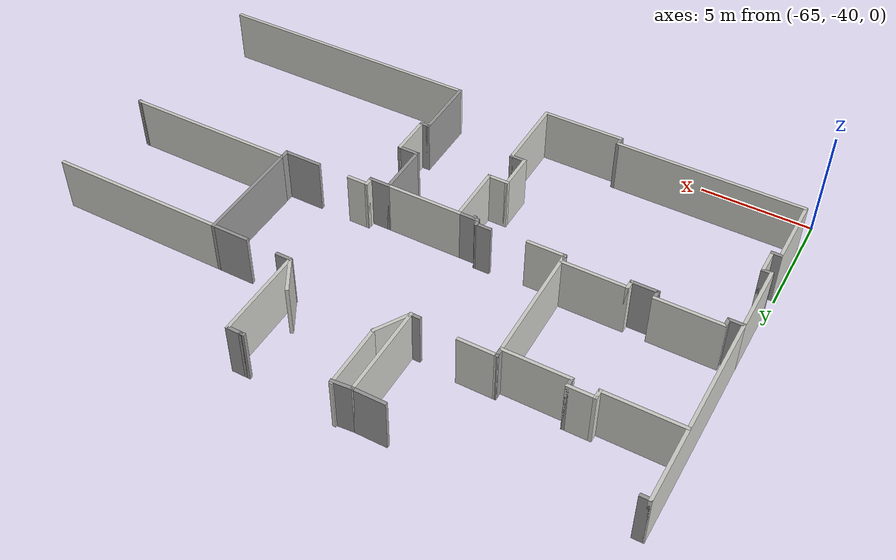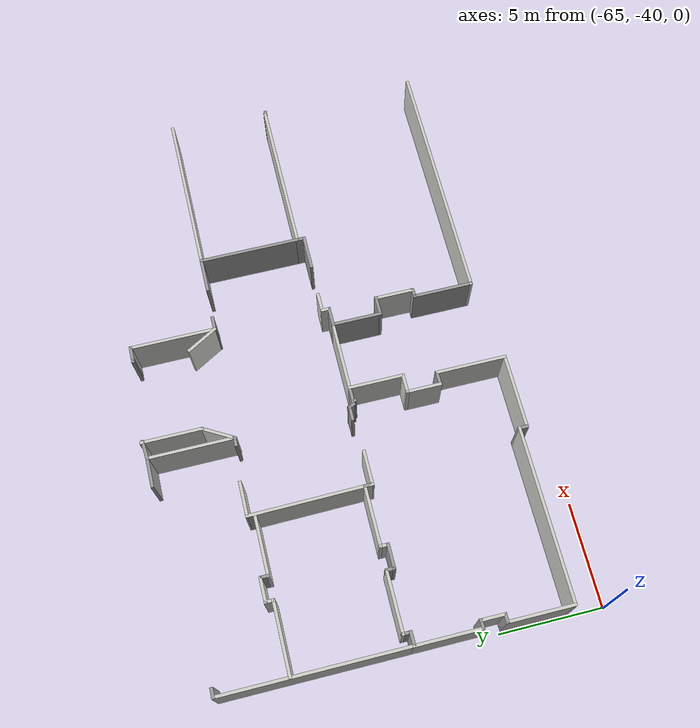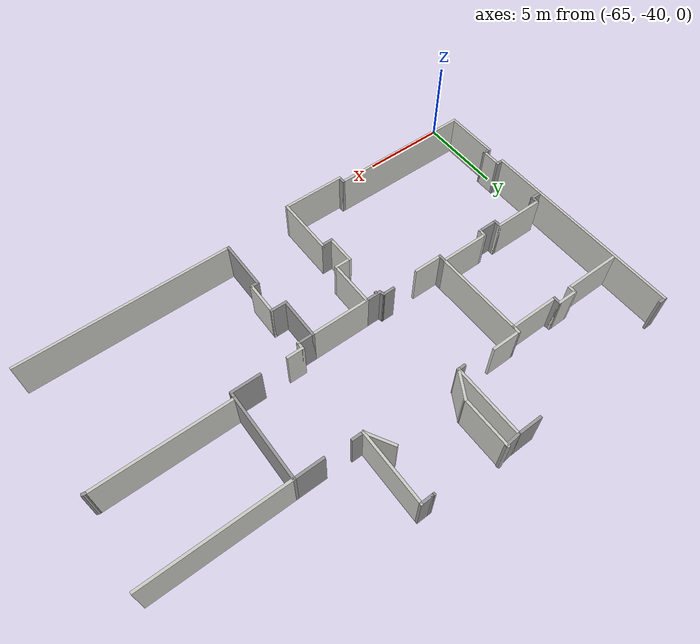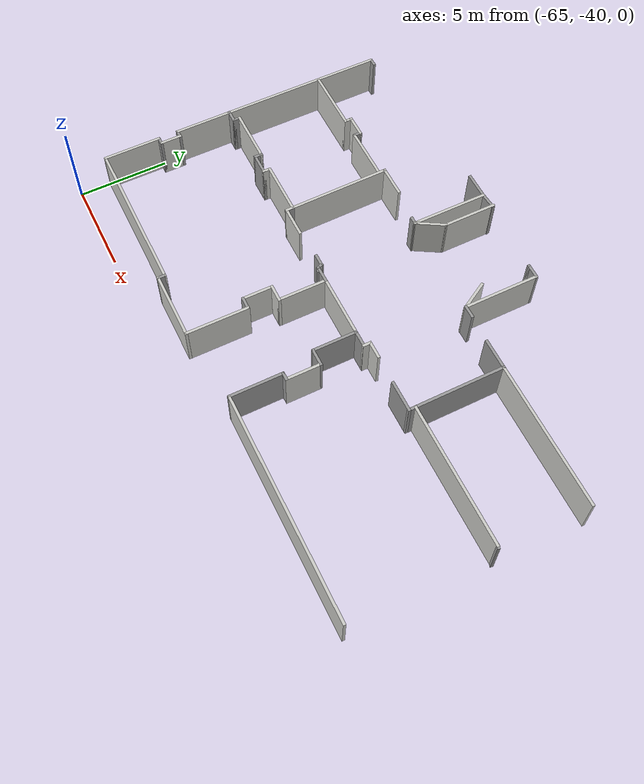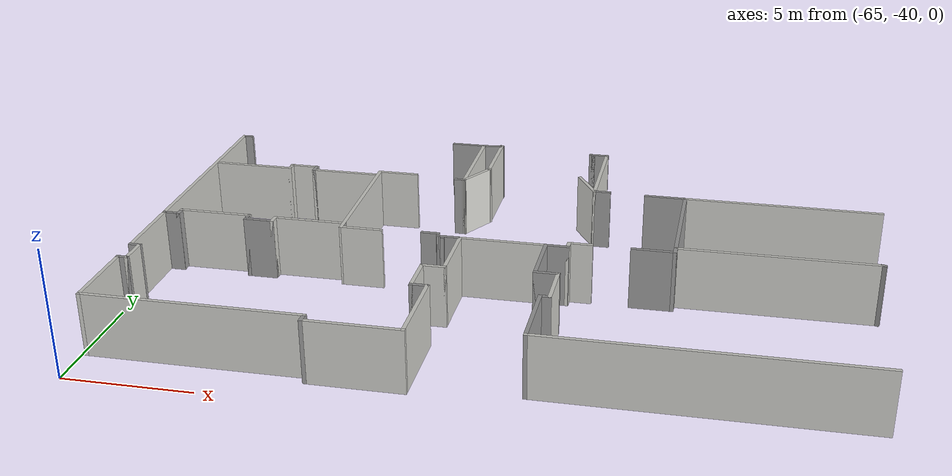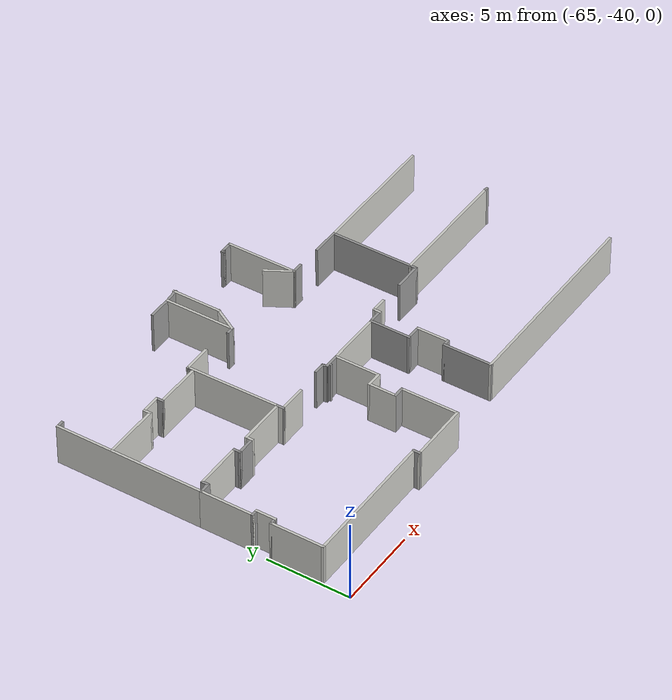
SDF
<sdf version="1.7">
 <model name="TD_n1">
  <pose>-37.6178 -12.8947 0 0 -0 0</pose>
  <link name="Wall_1">
   <collision name="Wall_1_Collision">
    <geometry><box><size>12.25 0.15 2.5</size></box></geometry>
    <pose>0 0 1.25 0 -0 0</pose>
   </collision>
   <visual name="Wall_1_Visual">
    <pose>0 0 1.25 0 -0 0</pose>
    <geometry><box><size>12.25 0.15 2.5</size></box></geometry>
    <material>
     <script><uri>file://media/materials/scripts/gazebo.material</uri><name>Gazebo/CeilingTiled</name></script>
     <ambient>1 1 1 1</ambient>
    </material>
    <meta><layer>0</layer></meta>
   </visual>
   <pose>-5.09282 -25.225 0 0 -0 3.14159</pose>
  </link>
  <link name="Wall_106">
   <collision name="Wall_106_Collision">
    <geometry><box><size>1.5 0.15 2.5</size></box></geometry>
    <pose>0 0 1.25 0 -0 0</pose>
   </collision>
   <visual name="Wall_106_Visual">
    <pose>0 0 1.25 0 -0 0</pose>
    <geometry><box><size>1.5 0.15 2.5</size></box></geometry>
    <material>
     <script><uri>file://media/materials/scripts/gazebo.material</uri><name>Gazebo/Grey</name></script>
     <ambient>1 1 1 1</ambient>
    </material>
    <meta><layer>0</layer></meta>
   </visual>
   <pose>-16.7826 -8.3195 0 0 -0 0</pose>
  </link>
  <link name="Wall_107">
   <collision name="Wall_107_Collision">
    <geometry><box><size>4.25 0.15 2.5</size></box></geometry>
    <pose>0 0 1.25 0 -0 0</pose>
   </collision>
   <visual name="Wall_107_Visual">
    <pose>0 0 1.25 0 -0 0</pose>
    <geometry><box><size>4.25 0.15 2.5</size></box></geometry>
    <material>
     <script><uri>file://media/materials/scripts/gazebo.material</uri><name>Gazebo/CeilingTiled</name></script>
     <ambient>1 1 1 1</ambient>
    </material>
    <meta><layer>0</layer></meta>
   </visual>
   <pose>-16.1076 -10.3695 0 0 -0 -1.5708</pose>
  </link>
  <link name="Wall_108">
   <collision name="Wall_108_Collision">
    <geometry><box><size>0.5 0.15 2.5</size></box></geometry>
    <pose>0 0 1.25 0 -0 0</pose>
   </collision>
   <visual name="Wall_108_Visual">
    <pose>0 0 1.25 0 -0 0</pose>
    <geometry><box><size>0.5 0.15 2.5</size></box></geometry>
    <material>
     <script><uri>file://media/materials/scripts/gazebo.material</uri><name>Gazebo/Grey</name></script>
     <ambient>1 1 1 1</ambient>
    </material>
    <meta><layer>0</layer></meta>
   </visual>
   <pose>-16.2826 -12.4195 0 0 -0 3.14159</pose>
  </link>
  <link name="Wall_110">
   <collision name="Wall_110_Collision">
    <geometry><box><size>3.5 0.15 2.5</size></box></geometry>
    <pose>0 0 1.25 0 -0 0</pose>
   </collision>
   <visual name="Wall_110_Visual">
    <pose>0 0 1.25 0 -0 0</pose>
    <geometry><box><size>3.5 0.15 2.5</size></box></geometry>
    <material>
     <script><uri>file://media/materials/scripts/gazebo.material</uri><name>Gazebo/CeilingTiled</name></script>
     <ambient>1 1 1 1</ambient>
    </material>
    <meta><layer>0</layer></meta>
   </visual>
   <pose>-25.4898 -12.578 0 0 -0 0</pose>
  </link>
  <link name="Wall_111">
   <collision name="Wall_111_Collision">
    <geometry><box><size>0.5 0.15 2.5</size></box></geometry>
    <pose>0 0 1.25 0 -0 0</pose>
   </collision>
   <visual name="Wall_111_Visual">
    <pose>0 0 1.25 0 -0 0</pose>
    <geometry><box><size>0.5 0.15 2.5</size></box></geometry>
    <material>
     <script><uri>file://media/materials/scripts/gazebo.material</uri><name>Gazebo/CeilingTiled</name></script>
     <ambient>1 1 1 1</ambient>
    </material>
    <meta><layer>0</layer></meta>
   </visual>
   <pose>-23.8148 -12.403 0 0 -0 1.5708</pose>
  </link>
  <link name="Wall_112">
   <collision name="Wall_112_Collision">
    <geometry><box><size>1.25 0.15 2.5</size></box></geometry>
    <pose>0 0 1.25 0 -0 0</pose>
   </collision>
   <visual name="Wall_112_Visual">
    <pose>0 0 1.25 0 -0 0</pose>
    <geometry><box><size>1.25 0.15 2.5</size></box></geometry>
    <material>
     <script><uri>file://media/materials/scripts/gazebo.material</uri><name>Gazebo/CeilingTiled</name></script>
     <ambient>1 1 1 1</ambient>
    </material>
    <meta><layer>0</layer></meta>
   </visual>
   <pose>-23.2648 -12.228 0 0 -0 0</pose>
  </link>
  <link name="Wall_113">
   <collision name="Wall_113_Collision">
    <geometry><box><size>0.5 0.15 2.5</size></box></geometry>
    <pose>0 0 1.25 0 -0 0</pose>
   </collision>
   <visual name="Wall_113_Visual">
    <pose>0 0 1.25 0 -0 0</pose>
    <geometry><box><size>0.5 0.15 2.5</size></box></geometry>
    <material>
     <script><uri>file://media/materials/scripts/gazebo.material</uri><name>Gazebo/Grey</name></script>
     <ambient>1 1 1 1</ambient>
    </material>
    <meta><layer>0</layer></meta>
   </visual>
   <pose>-22.7148 -12.403 0 0 -0 -1.5708</pose>
  </link>
  <link name="Wall_114">
   <collision name="Wall_114_Collision">
    <geometry><box><size>3 0.15 2.5</size></box></geometry>
    <pose>0 0 1.25 0 -0 0</pose>
   </collision>
   <visual name="Wall_114_Visual">
    <pose>0 0 1.25 0 -0 0</pose>
    <geometry><box><size>3 0.15 2.5</size></box></geometry>
    <material>
     <script><uri>file://media/materials/scripts/gazebo.material</uri><name>Gazebo/CeilingTiled</name></script>
     <ambient>1 1 1 1</ambient>
    </material>
    <meta><layer>0</layer></meta>
   </visual>
   <pose>-21.2898 -12.578 0 0 -0 0</pose>
  </link>
  <link name="Wall_115">
   <collision name="Wall_115_Collision">
    <geometry><box><size>0.5 0.15 2.5</size></box></geometry>
    <pose>0 0 1.25 0 -0 0</pose>
   </collision>
   <visual name="Wall_115_Visual">
    <pose>0 0 1.25 0 -0 0</pose>
    <geometry><box><size>0.5 0.15 2.5</size></box></geometry>
    <material>
     <script><uri>file://media/materials/scripts/gazebo.material</uri><name>Gazebo/Grey</name></script>
     <ambient>1 1 1 1</ambient>
    </material>
    <meta><layer>0</layer></meta>
   </visual>
   <pose>-19.8648 -12.403 0 0 -0 1.5708</pose>
  </link>
  <link name="Wall_116">
   <collision name="Wall_116_Collision">
    <geometry><box><size>1.75 0.15 2.5</size></box></geometry>
    <pose>0 0 1.25 0 -0 0</pose>
   </collision>
   <visual name="Wall_116_Visual">
    <pose>0 0 1.25 0 -0 0</pose>
    <geometry><box><size>1.75 0.15 2.5</size></box></geometry>
    <material>
     <script><uri>file://media/materials/scripts/gazebo.material</uri><name>Gazebo/CeilingTiled</name></script>
     <ambient>1 1 1 1</ambient>
    </material>
    <meta><layer>0</layer></meta>
   </visual>
   <pose>-19.0648 -12.228 0 0 -0 0</pose>
  </link>
  <link name="Wall_12">
   <collision name="Wall_12_Collision">
    <geometry><box><size>0.5 0.15 2.5</size></box></geometry>
    <pose>0 0 1.25 0 -0 0</pose>
   </collision>
   <visual name="Wall_12_Visual">
    <pose>0 0 1.25 0 -0 0</pose>
    <geometry><box><size>0.5 0.15 2.5</size></box></geometry>
    <material>
     <script><uri>file://media/materials/scripts/gazebo.material</uri><name>Gazebo/Grey</name></script>
     <ambient>1 1 1 1</ambient>
    </material>
    <meta><layer>0</layer></meta>
   </visual>
   <pose>-10.9678 -22.375 0 0 -0 0</pose>
  </link>
  <link name="Wall_13">
   <collision name="Wall_13_Collision">
    <geometry><box><size>2 0.15 2.5</size></box></geometry>
    <pose>0 0 1.25 0 -0 0</pose>
   </collision>
   <visual name="Wall_13_Visual">
    <pose>0 0 1.25 0 -0 0</pose>
    <geometry><box><size>2 0.15 2.5</size></box></geometry>
    <material>
     <script><uri>file://media/materials/scripts/gazebo.material</uri><name>Gazebo/CeilingTiled</name></script>
     <ambient>1 1 1 1</ambient>
    </material>
    <meta><layer>0</layer></meta>
   </visual>
   <pose>-10.7928 -21.45 0 0 -0 1.5708</pose>
  </link>
  <link name="Wall_14">
   <collision name="Wall_14_Collision">
    <geometry><box><size>1 0.15 2.5</size></box></geometry>
    <pose>0 0 1.25 0 -0 0</pose>
   </collision>
   <visual name="Wall_14_Visual">
    <pose>0 0 1.25 0 -0 0</pose>
    <geometry><box><size>1 0.15 2.5</size></box></geometry>
    <material>
     <script><uri>file://media/materials/scripts/gazebo.material</uri><name>Gazebo/Grey</name></script>
     <ambient>1 1 1 1</ambient>
    </material>
    <meta><layer>0</layer></meta>
   </visual>
   <pose>-11.2178 -20.525 0 0 -0 3.14159</pose>
  </link>
  <link name="Wall_147">
   <collision name="Wall_147_Collision">
    <geometry><box><size>0.987042 0.15 2.5</size></box></geometry>
    <pose>0 0 1.25 0 -0 0</pose>
   </collision>
   <visual name="Wall_147_Visual">
    <pose>0 0 1.25 0 -0 0</pose>
    <geometry><box><size>0.987042 0.15 2.5</size></box></geometry>
    <material>
     <script><uri>file://media/materials/scripts/gazebo.material</uri><name>Gazebo/Grey</name></script>
     <ambient>1 1 1 1</ambient>
    </material>
    <meta><layer>0</layer></meta>
   </visual>
   <pose>-15.6906 -8.28397 0 0 -0 -3.05658</pose>
  </link>
  <link name="Wall_15">
   <collision name="Wall_15_Collision">
    <geometry><box><size>2.5 0.15 2.5</size></box></geometry>
    <pose>0 0 1.25 0 -0 0</pose>
   </collision>
   <visual name="Wall_15_Visual">
    <pose>0 0 1.25 0 -0 0</pose>
    <geometry><box><size>2.5 0.15 2.5</size></box></geometry>
    <material>
     <script><uri>file://media/materials/scripts/gazebo.material</uri><name>Gazebo/Grey</name></script>
     <ambient>1 1 1 1</ambient>
    </material>
    <meta><layer>0</layer></meta>
   </visual>
   <pose>-11.6428 -19.35 0 0 -0 1.5708</pose>
  </link>
  <link name="Wall_152">
   <collision name="Wall_152_Collision">
    <geometry><box><size>1.75 0.15 2.5</size></box></geometry>
    <pose>0 0 1.25 0 -0 0</pose>
   </collision>
   <visual name="Wall_152_Visual">
    <pose>0 0 1.25 0 -0 0</pose>
    <geometry><box><size>1.75 0.15 2.5</size></box></geometry>
    <material>
     <script><uri>file://media/materials/scripts/gazebo.material</uri><name>Gazebo/CeilingTiled</name></script>
     <ambient>1 1 1 1</ambient>
    </material>
    <meta><layer>0</layer></meta>
   </visual>
   <pose>-15.7076 -11.7267 0 0 -0 1.0472</pose>
  </link>
  <link name="Wall_153">
   <collision name="Wall_153_Collision">
    <geometry><box><size>3 0.15 2.5</size></box></geometry>
    <pose>0 0 1.25 0 -0 0</pose>
   </collision>
   <visual name="Wall_153_Visual">
    <pose>0 0 1.25 0 -0 0</pose>
    <geometry><box><size>3 0.15 2.5</size></box></geometry>
    <material>
     <script><uri>file://media/materials/scripts/gazebo.material</uri><name>Gazebo/CeilingTiled</name></script>
     <ambient>1 1 1 1</ambient>
    </material>
    <meta><layer>0</layer></meta>
   </visual>
   <pose>-15.3076 -9.60886 0 0 -0 1.5708</pose>
  </link>
  <link name="Wall_155">
   <collision name="Wall_155_Collision">
    <geometry><box><size>0.25 0.15 2.5</size></box></geometry>
    <pose>0 0 1.25 0 -0 0</pose>
   </collision>
   <visual name="Wall_155_Visual">
    <pose>0 0 1.25 0 -0 0</pose>
    <geometry><box><size>0.25 0.15 2.5</size></box></geometry>
    <material>
     <script><uri>file://media/materials/scripts/gazebo.material</uri><name>Gazebo/Grey</name></script>
     <ambient>1 1 1 1</ambient>
    </material>
    <meta><layer>0</layer></meta>
   </visual>
   <pose>-11.1638 -8.48796 0 0 -0 3.14159</pose>
  </link>
  <link name="Wall_16">
   <collision name="Wall_16_Collision">
    <geometry><box><size>1 0.15 2.5</size></box></geometry>
    <pose>0 0 1.25 0 -0 0</pose>
   </collision>
   <visual name="Wall_16_Visual">
    <pose>0 0 1.25 0 -0 0</pose>
    <geometry><box><size>1 0.15 2.5</size></box></geometry>
    <material>
     <script><uri>file://media/materials/scripts/gazebo.material</uri><name>Gazebo/Grey</name></script>
     <ambient>1 1 1 1</ambient>
    </material>
    <meta><layer>0</layer></meta>
   </visual>
   <pose>-11.2178 -18.175 0 0 -0 0</pose>
  </link>
  <link name="Wall_163">
   <collision name="Wall_163_Collision">
    <geometry><box><size>5.99749 0.15 2.5</size></box></geometry>
    <pose>0 0 1.25 0 -0 0</pose>
   </collision>
   <visual name="Wall_163_Visual">
    <pose>0 0 1.25 0 -0 0</pose>
    <geometry><box><size>5.99749 0.15 2.5</size></box></geometry>
    <material>
     <script><uri>file://media/materials/scripts/gazebo.material</uri><name>Gazebo/CeilingTiled</name></script>
     <ambient>1 1 1 1</ambient>
    </material>
    <meta><layer>0</layer></meta>
   </visual>
   <pose>-19.8288 -15.1515 0 0 -0 1.5831</pose>
  </link>
  <link name="Wall_17">
   <collision name="Wall_17_Collision">
    <geometry><box><size>0.5 0.15 2.5</size></box></geometry>
    <pose>0 0 1.25 0 -0 0</pose>
   </collision>
   <visual name="Wall_17_Visual">
    <pose>0 0 1.25 0 -0 0</pose>
    <geometry><box><size>0.5 0.15 2.5</size></box></geometry>
    <material>
     <script><uri>file://media/materials/scripts/gazebo.material</uri><name>Gazebo/CeilingTiled</name></script>
     <ambient>1 1 1 1</ambient>
    </material>
    <meta><layer>0</layer></meta>
   </visual>
   <pose>-10.7928 -18 0 0 -0 1.5708</pose>
  </link>
  <link name="Wall_18">
   <collision name="Wall_18_Collision">
    <geometry><box><size>1 0.15 2.5</size></box></geometry>
    <pose>0 0 1.25 0 -0 0</pose>
   </collision>
   <visual name="Wall_18_Visual">
    <pose>0 0 1.25 0 -0 0</pose>
    <geometry><box><size>1 0.15 2.5</size></box></geometry>
    <material>
     <script><uri>file://media/materials/scripts/gazebo.material</uri><name>Gazebo/CeilingTiled</name></script>
     <ambient>1 1 1 1</ambient>
    </material>
    <meta><layer>0</layer></meta>
   </visual>
   <pose>-10.3678 -17.825 0 0 -0 0</pose>
  </link>
  <link name="Wall_20">
   <collision name="Wall_20_Collision">
    <geometry><box><size>1.75 0.15 2.5</size></box></geometry>
    <pose>0 0 1.25 0 -0 0</pose>
   </collision>
   <visual name="Wall_20_Visual">
    <pose>0 0 1.25 0 -0 0</pose>
    <geometry><box><size>1.75 0.15 2.5</size></box></geometry>
    <material>
     <script><uri>file://media/materials/scripts/gazebo.material</uri><name>Gazebo/Grey</name></script>
     <ambient>1 1 1 1</ambient>
    </material>
    <meta><layer>0</layer></meta>
   </visual>
   <pose>-7.55396 -17.8555 0 0 -0 0</pose>
  </link>
  <link name="Wall_21">
   <collision name="Wall_21_Collision">
    <geometry><box><size>0.5 0.15 2.5</size></box></geometry>
    <pose>0 0 1.25 0 -0 0</pose>
   </collision>
   <visual name="Wall_21_Visual">
    <pose>0 0 1.25 0 -0 0</pose>
    <geometry><box><size>0.5 0.15 2.5</size></box></geometry>
    <material>
     <script><uri>file://media/materials/scripts/gazebo.material</uri><name>Gazebo/Grey</name></script>
     <ambient>1 1 1 1</ambient>
    </material>
    <meta><layer>0</layer></meta>
   </visual>
   <pose>-6.75396 -17.6805 0 0 -0 1.5708</pose>
  </link>
  <link name="Wall_22">
   <collision name="Wall_22_Collision">
    <geometry><box><size>7.75 0.15 2.5</size></box></geometry>
    <pose>0 0 1.25 0 -0 0</pose>
   </collision>
   <visual name="Wall_22_Visual">
    <pose>0 0 1.25 0 -0 0</pose>
    <geometry><box><size>7.75 0.15 2.5</size></box></geometry>
    <material>
     <script><uri>file://media/materials/scripts/gazebo.material</uri><name>Gazebo/CeilingTiled</name></script>
     <ambient>1 1 1 1</ambient>
    </material>
    <meta><layer>0</layer></meta>
   </visual>
   <pose>-2.95396 -17.5055 0 0 -0 0</pose>
  </link>
  <link name="Wall_23">
   <collision name="Wall_23_Collision">
    <geometry><box><size>0.25 0.15 2.5</size></box></geometry>
    <pose>0 0 1.25 0 -0 0</pose>
   </collision>
   <visual name="Wall_23_Visual">
    <pose>0 0 1.25 0 -0 0</pose>
    <geometry><box><size>0.25 0.15 2.5</size></box></geometry>
    <material>
     <script><uri>file://media/materials/scripts/gazebo.material</uri><name>Gazebo/Grey</name></script>
     <ambient>1 1 1 1</ambient>
    </material>
    <meta><layer>0</layer></meta>
   </visual>
   <pose>0.894333 -17.5184 0 0 -0 -0.261799</pose>
  </link>
  <link name="Wall_25">
   <collision name="Wall_25_Collision">
    <geometry><box><size>5 0.15 2.5</size></box></geometry>
    <pose>0 0 1.25 0 -0 0</pose>
   </collision>
   <visual name="Wall_25_Visual">
    <pose>0 0 1.25 0 -0 0</pose>
    <geometry><box><size>5 0.15 2.5</size></box></geometry>
    <material>
     <script><uri>file://media/materials/scripts/gazebo.material</uri><name>Gazebo/Grey</name></script>
     <ambient>1 1 1 1</ambient>
    </material>
    <meta><layer>0</layer></meta>
   </visual>
   <pose>-6.75396 -15.0805 0 0 -0 1.5708</pose>
  </link>
  <link name="Wall_26">
   <collision name="Wall_26_Collision">
    <geometry><box><size>8 0.15 2.5</size></box></geometry>
    <pose>0 0 1.25 0 -0 0</pose>
   </collision>
   <visual name="Wall_26_Visual">
    <pose>0 0 1.25 0 -0 0</pose>
    <geometry><box><size>8 0.15 2.5</size></box></geometry>
    <material>
     <script><uri>file://media/materials/scripts/gazebo.material</uri><name>Gazebo/CeilingTiled</name></script>
     <ambient>1 1 1 1</ambient>
    </material>
    <meta><layer>0</layer></meta>
   </visual>
   <pose>-2.82896 -12.6555 0 0 -0 0</pose>
  </link>
  <link name="Wall_28">
   <collision name="Wall_28_Collision">
    <geometry><box><size>1.75 0.15 2.5</size></box></geometry>
    <pose>0 0 1.25 0 -0 0</pose>
   </collision>
   <visual name="Wall_28_Visual">
    <pose>0 0 1.25 0 -0 0</pose>
    <geometry><box><size>1.75 0.15 2.5</size></box></geometry>
    <material>
     <script><uri>file://media/materials/scripts/gazebo.material</uri><name>Gazebo/Grey</name></script>
     <ambient>1 1 1 1</ambient>
    </material>
    <meta><layer>0</layer></meta>
   </visual>
   <pose>-7.55396 -12.6555 0 0 -0 3.14159</pose>
  </link>
  <link name="Wall_35">
   <collision name="Wall_35_Collision">
    <geometry><box><size>0.75 0.15 2.5</size></box></geometry>
    <pose>0 0 1.25 0 -0 0</pose>
   </collision>
   <visual name="Wall_35_Visual">
    <pose>0 0 1.25 0 -0 0</pose>
    <geometry><box><size>0.75 0.15 2.5</size></box></geometry>
    <material>
     <script><uri>file://media/materials/scripts/gazebo.material</uri><name>Gazebo/Grey</name></script>
     <ambient>1 1 1 1</ambient>
    </material>
    <meta><layer>0</layer></meta>
   </visual>
   <pose>-10.2138 -12.588 0 0 -0 3.14159</pose>
  </link>
  <link name="Wall_36">
   <collision name="Wall_36_Collision">
    <geometry><box><size>1.75 0.15 2.5</size></box></geometry>
    <pose>0 0 1.25 0 -0 0</pose>
   </collision>
   <visual name="Wall_36_Visual">
    <pose>0 0 1.25 0 -0 0</pose>
    <geometry><box><size>1.75 0.15 2.5</size></box></geometry>
    <material>
     <script><uri>file://media/materials/scripts/gazebo.material</uri><name>Gazebo/CeilingTiled</name></script>
     <ambient>1 1 1 1</ambient>
    </material>
    <meta><layer>0</layer></meta>
   </visual>
   <pose>-10.9138 -11.8951 0 0 -0 2.0944</pose>
  </link>
  <link name="Wall_41">
   <collision name="Wall_41_Collision">
    <geometry><box><size>4.25 0.15 2.5</size></box></geometry>
    <pose>0 0 1.25 0 -0 0</pose>
   </collision>
   <visual name="Wall_41_Visual">
    <pose>0 0 1.25 0 -0 0</pose>
    <geometry><box><size>4.25 0.15 2.5</size></box></geometry>
    <material>
     <script><uri>file://media/materials/scripts/gazebo.material</uri><name>Gazebo/CeilingTiled</name></script>
     <ambient>1 1 1 1</ambient>
    </material>
    <meta><layer>0</layer></meta>
   </visual>
   <pose>-10.5138 -10.538 0 0 -0 1.5708</pose>
  </link>
  <link name="Wall_42">
   <collision name="Wall_42_Collision">
    <geometry><box><size>0.75 0.15 2.5</size></box></geometry>
    <pose>0 0 1.25 0 -0 0</pose>
   </collision>
   <visual name="Wall_42_Visual">
    <pose>0 0 1.25 0 -0 0</pose>
    <geometry><box><size>0.75 0.15 2.5</size></box></geometry>
    <material>
     <script><uri>file://media/materials/scripts/gazebo.material</uri><name>Gazebo/Grey</name></script>
     <ambient>1 1 1 1</ambient>
    </material>
    <meta><layer>0</layer></meta>
   </visual>
   <pose>-10.8138 -8.48796 0 0 -0 3.14159</pose>
  </link>
  <link name="Wall_44">
   <collision name="Wall_44_Collision">
    <geometry><box><size>0.15 0.15 2.5</size></box></geometry>
    <pose>0 0 1.25 0 -0 0</pose>
   </collision>
   <visual name="Wall_44_Visual">
    <pose>0 0 1.25 0 -0 0</pose>
    <geometry><box><size>0.15 0.15 2.5</size></box></geometry>
    <material>
     <script><uri>file://media/materials/scripts/gazebo.material</uri><name>Gazebo/Grey</name></script>
     <ambient>1 1 1 1</ambient>
    </material>
    <meta><layer>0</layer></meta>
   </visual>
   <pose>-11.1138 -8.48796 0 0 -0 0</pose>
  </link>
  <link name="Wall_54">
   <collision name="Wall_54_Collision">
    <geometry><box><size>3.5 0.15 2.5</size></box></geometry>
    <pose>0 0 1.25 0 -0 0</pose>
   </collision>
   <visual name="Wall_54_Visual">
    <pose>0 0 1.25 0 -0 0</pose>
    <geometry><box><size>3.5 0.15 2.5</size></box></geometry>
    <material>
     <script><uri>file://media/materials/scripts/gazebo.material</uri><name>Gazebo/CeilingTiled</name></script>
     <ambient>1 1 1 1</ambient>
    </material>
    <meta><layer>0</layer></meta>
   </visual>
   <pose>-13.3178 -18.175 0 0 -0 3.14159</pose>
  </link>
  <link name="Wall_55">
   <collision name="Wall_55_Collision">
    <geometry><box><size>2.75 0.15 2.5</size></box></geometry>
    <pose>0 0 1.25 0 -0 0</pose>
   </collision>
   <visual name="Wall_55_Visual">
    <pose>0 0 1.25 0 -0 0</pose>
    <geometry><box><size>2.75 0.15 2.5</size></box></geometry>
    <material>
     <script><uri>file://media/materials/scripts/gazebo.material</uri><name>Gazebo/CeilingTiled</name></script>
     <ambient>1 1 1 1</ambient>
    </material>
    <meta><layer>0</layer></meta>
   </visual>
   <pose>-14.9928 -19.475 0 0 -0 -1.5708</pose>
  </link>
  <link name="Wall_56">
   <collision name="Wall_56_Collision">
    <geometry><box><size>1 0.15 2.5</size></box></geometry>
    <pose>0 0 1.25 0 -0 0</pose>
   </collision>
   <visual name="Wall_56_Visual">
    <pose>0 0 1.25 0 -0 0</pose>
    <geometry><box><size>1 0.15 2.5</size></box></geometry>
    <material>
     <script><uri>file://media/materials/scripts/gazebo.material</uri><name>Gazebo/CeilingTiled</name></script>
     <ambient>1 1 1 1</ambient>
    </material>
    <meta><layer>0</layer></meta>
   </visual>
   <pose>-15.4178 -20.775 0 0 -0 3.14159</pose>
  </link>
  <link name="Wall_57">
   <collision name="Wall_57_Collision">
    <geometry><box><size>1.75 0.15 2.5</size></box></geometry>
    <pose>0 0 1.25 0 -0 0</pose>
   </collision>
   <visual name="Wall_57_Visual">
    <pose>0 0 1.25 0 -0 0</pose>
    <geometry><box><size>1.75 0.15 2.5</size></box></geometry>
    <material>
     <script><uri>file://media/materials/scripts/gazebo.material</uri><name>Gazebo/CeilingTiled</name></script>
     <ambient>1 1 1 1</ambient>
    </material>
    <meta><layer>0</layer></meta>
   </visual>
   <pose>-15.8428 -21.575 0 0 -0 -1.5708</pose>
  </link>
  <link name="Wall_58">
   <collision name="Wall_58_Collision">
    <geometry><box><size>0.75 0.15 2.5</size></box></geometry>
    <pose>0 0 1.25 0 -0 0</pose>
   </collision>
   <visual name="Wall_58_Visual">
    <pose>0 0 1.25 0 -0 0</pose>
    <geometry><box><size>0.75 0.15 2.5</size></box></geometry>
    <material>
     <script><uri>file://media/materials/scripts/gazebo.material</uri><name>Gazebo/Grey</name></script>
     <ambient>1 1 1 1</ambient>
    </material>
    <meta><layer>0</layer></meta>
   </visual>
   <pose>-15.5428 -22.375 0 0 -0 0</pose>
  </link>
  <link name="Wall_59">
   <collision name="Wall_59_Collision">
    <geometry><box><size>3.5 0.15 2.5</size></box></geometry>
    <pose>0 0 1.25 0 -0 0</pose>
   </collision>
   <visual name="Wall_59_Visual">
    <pose>0 0 1.25 0 -0 0</pose>
    <geometry><box><size>3.5 0.15 2.5</size></box></geometry>
    <material>
     <script><uri>file://media/materials/scripts/gazebo.material</uri><name>Gazebo/CeilingTiled</name></script>
     <ambient>1 1 1 1</ambient>
    </material>
    <meta><layer>0</layer></meta>
   </visual>
   <pose>-15.2428 -24.05 0 0 -0 -1.5708</pose>
  </link>
  <link name="Wall_60">
   <collision name="Wall_60_Collision">
    <geometry><box><size>3.75 0.15 2.5</size></box></geometry>
    <pose>0 0 1.25 0 -0 0</pose>
   </collision>
   <visual name="Wall_60_Visual">
    <pose>0 0 1.25 0 -0 0</pose>
    <geometry><box><size>3.75 0.15 2.5</size></box></geometry>
    <material>
     <script><uri>file://media/materials/scripts/gazebo.material</uri><name>Gazebo/CeilingTiled</name></script>
     <ambient>1 1 1 1</ambient>
    </material>
    <meta><layer>0</layer></meta>
   </visual>
   <pose>-17.0428 -25.725 0 0 -0 3.14159</pose>
  </link>
  <link name="Wall_61">
   <collision name="Wall_61_Collision">
    <geometry><box><size>0.5 0.15 2.5</size></box></geometry>
    <pose>0 0 1.25 0 -0 0</pose>
   </collision>
   <visual name="Wall_61_Visual">
    <pose>0 0 1.25 0 -0 0</pose>
    <geometry><box><size>0.5 0.15 2.5</size></box></geometry>
    <material>
     <script><uri>file://media/materials/scripts/gazebo.material</uri><name>Gazebo/Grey</name></script>
     <ambient>1 1 1 1</ambient>
    </material>
    <meta><layer>0</layer></meta>
   </visual>
   <pose>-18.8428 -25.55 0 0 -0 1.5708</pose>
  </link>
  <link name="Wall_62">
   <collision name="Wall_62_Collision">
    <geometry><box><size>8.5 0.15 2.5</size></box></geometry>
    <pose>0 0 1.25 0 -0 0</pose>
   </collision>
   <visual name="Wall_62_Visual">
    <pose>0 0 1.25 0 -0 0</pose>
    <geometry><box><size>8.5 0.15 2.5</size></box></geometry>
    <material>
     <script><uri>file://media/materials/scripts/gazebo.material</uri><name>Gazebo/CeilingTiled</name></script>
     <ambient>1 1 1 1</ambient>
    </material>
    <meta><layer>0</layer></meta>
   </visual>
   <pose>-23.0178 -25.375 0 0 -0 3.14159</pose>
  </link>
  <link name="Wall_63">
   <collision name="Wall_63_Collision">
    <geometry><box><size>3.25 0.15 2.5</size></box></geometry>
    <pose>0 0 1.25 0 -0 0</pose>
   </collision>
   <visual name="Wall_63_Visual">
    <pose>0 0 1.25 0 -0 0</pose>
    <geometry><box><size>3.25 0.15 2.5</size></box></geometry>
    <material>
     <script><uri>file://media/materials/scripts/gazebo.material</uri><name>Gazebo/CeilingTiled</name></script>
     <ambient>1 1 1 1</ambient>
    </material>
    <meta><layer>0</layer></meta>
   </visual>
   <pose>-27.1928 -23.825 0 0 -0 1.5708</pose>
  </link>
  <link name="Wall_65">
   <collision name="Wall_65_Collision">
    <geometry><box><size>0.5 0.15 2.5</size></box></geometry>
    <pose>0 0 1.25 0 -0 0</pose>
   </collision>
   <visual name="Wall_65_Visual">
    <pose>0 0 1.25 0 -0 0</pose>
    <geometry><box><size>0.5 0.15 2.5</size></box></geometry>
    <material>
     <script><uri>file://media/materials/scripts/gazebo.material</uri><name>Gazebo/Grey</name></script>
     <ambient>1 1 1 1</ambient>
    </material>
    <meta><layer>0</layer></meta>
   </visual>
   <pose>-27.0178 -22.275 0 0 -0 0</pose>
  </link>
  <link name="Wall_66">
   <collision name="Wall_66_Collision">
    <geometry><box><size>1.25 0.15 2.5</size></box></geometry>
    <pose>0 0 1.25 0 -0 0</pose>
   </collision>
   <visual name="Wall_66_Visual">
    <pose>0 0 1.25 0 -0 0</pose>
    <geometry><box><size>1.25 0.15 2.5</size></box></geometry>
    <material>
     <script><uri>file://media/materials/scripts/gazebo.material</uri><name>Gazebo/CeilingTiled</name></script>
     <ambient>1 1 1 1</ambient>
    </material>
    <meta><layer>0</layer></meta>
   </visual>
   <pose>-26.8428 -21.725 0 0 -0 1.5708</pose>
  </link>
  <link name="Wall_67">
   <collision name="Wall_67_Collision">
    <geometry><box><size>0.5 0.15 2.5</size></box></geometry>
    <pose>0 0 1.25 0 -0 0</pose>
   </collision>
   <visual name="Wall_67_Visual">
    <pose>0 0 1.25 0 -0 0</pose>
    <geometry><box><size>0.5 0.15 2.5</size></box></geometry>
    <material>
     <script><uri>file://media/materials/scripts/gazebo.material</uri><name>Gazebo/Grey</name></script>
     <ambient>1 1 1 1</ambient>
    </material>
    <meta><layer>0</layer></meta>
   </visual>
   <pose>-27.0178 -21.175 0 0 -0 3.14159</pose>
  </link>
  <link name="Wall_69">
   <collision name="Wall_69_Collision">
    <geometry><box><size>3.25 0.15 2.5</size></box></geometry>
    <pose>0 0 1.25 0 -0 0</pose>
   </collision>
   <visual name="Wall_69_Visual">
    <pose>0 0 1.25 0 -0 0</pose>
    <geometry><box><size>3.25 0.15 2.5</size></box></geometry>
    <material>
     <script><uri>file://media/materials/scripts/gazebo.material</uri><name>Gazebo/CeilingTiled</name></script>
     <ambient>1 1 1 1</ambient>
    </material>
    <meta><layer>0</layer></meta>
   </visual>
   <pose>-27.1928 -19.625 0 0 -0 1.5708</pose>
  </link>
  <link name="Wall_70">
   <collision name="Wall_70_Collision">
    <geometry><box><size>0.75 0.15 2.5</size></box></geometry>
    <pose>0 0 1.25 0 -0 0</pose>
   </collision>
   <visual name="Wall_70_Visual">
    <pose>0 0 1.25 0 -0 0</pose>
    <geometry><box><size>0.75 0.15 2.5</size></box></geometry>
    <material>
     <script><uri>file://media/materials/scripts/gazebo.material</uri><name>Gazebo/Grey</name></script>
     <ambient>1 1 1 1</ambient>
    </material>
    <meta><layer>0</layer></meta>
   </visual>
   <pose>-26.8928 -18.075 0 0 -0 0</pose>
  </link>
  <link name="Wall_71">
   <collision name="Wall_71_Collision">
    <geometry><box><size>0.5 0.15 2.5</size></box></geometry>
    <pose>0 0 1.25 0 -0 0</pose>
   </collision>
   <visual name="Wall_71_Visual">
    <pose>0 0 1.25 0 -0 0</pose>
    <geometry><box><size>0.5 0.15 2.5</size></box></geometry>
    <material>
     <script><uri>file://media/materials/scripts/gazebo.material</uri><name>Gazebo/Grey</name></script>
     <ambient>1 1 1 1</ambient>
    </material>
    <meta><layer>0</layer></meta>
   </visual>
   <pose>-26.5928 -17.9 0 0 -0 1.5708</pose>
  </link>
  <link name="Wall_72">
   <collision name="Wall_72_Collision">
    <geometry><box><size>3 0.15 2.5</size></box></geometry>
    <pose>0 0 1.25 0 -0 0</pose>
   </collision>
   <visual name="Wall_72_Visual">
    <pose>0 0 1.25 0 -0 0</pose>
    <geometry><box><size>3 0.15 2.5</size></box></geometry>
    <material>
     <script><uri>file://media/materials/scripts/gazebo.material</uri><name>Gazebo/CeilingTiled</name></script>
     <ambient>1 1 1 1</ambient>
    </material>
    <meta><layer>0</layer></meta>
   </visual>
   <pose>-25.1678 -17.725 0 0 -0 0</pose>
  </link>
  <link name="Wall_73">
   <collision name="Wall_73_Collision">
    <geometry><box><size>0.5 0.15 2.5</size></box></geometry>
    <pose>0 0 1.25 0 -0 0</pose>
   </collision>
   <visual name="Wall_73_Visual">
    <pose>0 0 1.25 0 -0 0</pose>
    <geometry><box><size>0.5 0.15 2.5</size></box></geometry>
    <material>
     <script><uri>file://media/materials/scripts/gazebo.material</uri><name>Gazebo/Grey</name></script>
     <ambient>1 1 1 1</ambient>
    </material>
    <meta><layer>0</layer></meta>
   </visual>
   <pose>-23.7428 -17.9 0 0 -0 -1.5708</pose>
  </link>
  <link name="Wall_74">
   <collision name="Wall_74_Collision">
    <geometry><box><size>1.25 0.15 2.5</size></box></geometry>
    <pose>0 0 1.25 0 -0 0</pose>
   </collision>
   <visual name="Wall_74_Visual">
    <pose>0 0 1.25 0 -0 0</pose>
    <geometry><box><size>1.25 0.15 2.5</size></box></geometry>
    <material>
     <script><uri>file://media/materials/scripts/gazebo.material</uri><name>Gazebo/Grey</name></script>
     <ambient>1 1 1 1</ambient>
    </material>
    <meta><layer>0</layer></meta>
   </visual>
   <pose>-23.1928 -18.075 0 0 -0 0</pose>
  </link>
  <link name="Wall_75">
   <collision name="Wall_75_Collision">
    <geometry><box><size>0.5 0.15 2.5</size></box></geometry>
    <pose>0 0 1.25 0 -0 0</pose>
   </collision>
   <visual name="Wall_75_Visual">
    <pose>0 0 1.25 0 -0 0</pose>
    <geometry><box><size>0.5 0.15 2.5</size></box></geometry>
    <material>
     <script><uri>file://media/materials/scripts/gazebo.material</uri><name>Gazebo/CeilingTiled</name></script>
     <ambient>1 1 1 1</ambient>
    </material>
    <meta><layer>0</layer></meta>
   </visual>
   <pose>-22.6428 -17.9 0 0 -0 1.5708</pose>
  </link>
  <link name="Wall_76">
   <collision name="Wall_76_Collision">
    <geometry><box><size>3 0.15 2.5</size></box></geometry>
    <pose>0 0 1.25 0 -0 0</pose>
   </collision>
   <visual name="Wall_76_Visual">
    <pose>0 0 1.25 0 -0 0</pose>
    <geometry><box><size>3 0.15 2.5</size></box></geometry>
    <material>
     <script><uri>file://media/materials/scripts/gazebo.material</uri><name>Gazebo/CeilingTiled</name></script>
     <ambient>1 1 1 1</ambient>
    </material>
    <meta><layer>0</layer></meta>
   </visual>
   <pose>-21.2178 -17.725 0 0 -0 0</pose>
  </link>
  <link name="Wall_77">
   <collision name="Wall_77_Collision">
    <geometry><box><size>0.5 0.15 2.5</size></box></geometry>
    <pose>0 0 1.25 0 -0 0</pose>
   </collision>
   <visual name="Wall_77_Visual">
    <pose>0 0 1.25 0 -0 0</pose>
    <geometry><box><size>0.5 0.15 2.5</size></box></geometry>
    <material>
     <script><uri>file://media/materials/scripts/gazebo.material</uri><name>Gazebo/Grey</name></script>
     <ambient>1 1 1 1</ambient>
    </material>
    <meta><layer>0</layer></meta>
   </visual>
   <pose>-19.7928 -17.9 0 0 -0 -1.5708</pose>
  </link>
  <link name="Wall_81">
   <collision name="Wall_81_Collision">
    <geometry><box><size>1.75 0.15 2.5</size></box></geometry>
    <pose>0 0 1.25 0 -0 0</pose>
   </collision>
   <visual name="Wall_81_Visual">
    <pose>0 0 1.25 0 -0 0</pose>
    <geometry><box><size>1.75 0.15 2.5</size></box></geometry>
    <material>
     <script><uri>file://media/materials/scripts/gazebo.material</uri><name>Gazebo/CeilingTiled</name></script>
     <ambient>1 1 1 1</ambient>
    </material>
    <meta><layer>0</layer></meta>
   </visual>
   <pose>-18.9928 -18.075 0 0 -0 0</pose>
  </link>
  <link name="Wall_9">
   <collision name="Wall_9_Collision">
    <geometry><box><size>3 0.15 2.5</size></box></geometry>
    <pose>0 0 1.25 0 -0 0</pose>
   </collision>
   <visual name="Wall_9_Visual">
    <pose>0 0 1.25 0 -0 0</pose>
    <geometry><box><size>3 0.15 2.5</size></box></geometry>
    <material>
     <script><uri>file://media/materials/scripts/gazebo.material</uri><name>Gazebo/Grey</name></script>
     <ambient>1 1 1 1</ambient>
    </material>
    <meta><layer>0</layer></meta>
   </visual>
   <pose>-11.1428 -23.8 0 0 -0 1.5708</pose>
  </link>
  <link name="Wall_91">
   <collision name="Wall_91_Collision">
    <geometry><box><size>0.15 0.15 2.5</size></box></geometry>
    <pose>0 0 1.25 0 -0 0</pose>
   </collision>
   <visual name="Wall_91_Visual">
    <pose>0 0 1.25 0 -0 0</pose>
    <geometry><box><size>0.15 0.15 2.5</size></box></geometry>
    <material>
     <script><uri>file://media/materials/scripts/gazebo.material</uri><name>Gazebo/Grey</name></script>
     <ambient>0 0 0 1</ambient>
    </material>
    <meta><layer>0</layer></meta>
   </visual>
   <pose>-15.671 -18.2698 0 0 -0 0</pose>
  </link>
  <link name="Wall_92">
   <collision name="Wall_92_Collision">
    <geometry><box><size>1 0.15 2.5</size></box></geometry>
    <pose>0 0 1.25 0 -0 0</pose>
   </collision>
   <visual name="Wall_92_Visual">
    <pose>0 0 1.25 0 -0 0</pose>
    <geometry><box><size>1 0.15 2.5</size></box></geometry>
    <material>
     <script><uri>file://media/materials/scripts/gazebo.material</uri><name>Gazebo/Grey</name></script>
     <ambient>1 1 1 1</ambient>
    </material>
    <meta><layer>0</layer></meta>
   </visual>
   <pose>-15.4178 -18.175 0 0 -0 3.14159</pose>
  </link>
  <link name="Wall_94">
   <collision name="Wall_94_Collision">
    <geometry><box><size>0.75 0.15 2.5</size></box></geometry>
    <pose>0 0 1.25 0 -0 0</pose>
   </collision>
   <visual name="Wall_94_Visual">
    <pose>0 0 1.25 0 -0 0</pose>
    <geometry><box><size>0.75 0.15 2.5</size></box></geometry>
    <material>
     <script><uri>file://media/materials/scripts/gazebo.material</uri><name>Gazebo/Grey</name></script>
     <ambient>1 1 1 1</ambient>
    </material>
    <meta><layer>0</layer></meta>
   </visual>
   <pose>-16.2276 -17.9469 0 0 -0 0</pose>
  </link>
  <link name="Wall_95">
   <collision name="Wall_95_Collision">
    <geometry><box><size>0.393367 0.15 2.5</size></box></geometry>
    <pose>0 0 1.25 0 -0 0</pose>
   </collision>
   <visual name="Wall_95_Visual">
    <pose>0 0 1.25 0 -0 0</pose>
    <geometry><box><size>0.393367 0.15 2.5</size></box></geometry>
    <material>
     <script><uri>file://media/materials/scripts/gazebo.material</uri><name>Gazebo/Grey</name></script>
     <ambient>1 1 1 1</ambient>
    </material>
    <meta><layer>0</layer></meta>
   </visual>
   <pose>-15.8852 -18.0609 0 0 -0 -1.21503</pose>
  </link>
  <link name="Wall_97">
   <collision name="Wall_97_Collision">
    <geometry><box><size>9 0.15 2.5</size></box></geometry>
    <pose>0 0 1.25 0 -0 0</pose>
   </collision>
   <visual name="Wall_97_Visual">
    <pose>0 0 1.25 0 -0 0</pose>
    <geometry><box><size>9 0.15 2.5</size></box></geometry>
    <material>
     <script><uri>file://media/materials/scripts/gazebo.material</uri><name>Gazebo/CeilingTiled</name></script>
     <ambient>1 1 1 1</ambient>
    </material>
    <meta><layer>0</layer></meta>
   </visual>
   <pose>-27.1928 -13.65 0 0 -0 1.5708</pose>
  </link>
  <link name="Wall_98">
   <collision name="Wall_98_Collision">
    <geometry><box><size>0.5 0.15 2.5</size></box></geometry>
    <pose>0 0 1.25 0 -0 0</pose>
   </collision>
   <visual name="Wall_98_Visual">
    <pose>0 0 1.25 0 -0 0</pose>
    <geometry><box><size>0.5 0.15 2.5</size></box></geometry>
    <material>
     <script><uri>file://media/materials/scripts/gazebo.material</uri><name>Gazebo/Grey</name></script>
     <ambient>1 1 1 1</ambient>
    </material>
    <meta><layer>0</layer></meta>
   </visual>
   <pose>-27.0178 -9.225 0 0 -0 0</pose>
  </link>
  <static>1</static>
 </model>
</sdf>
